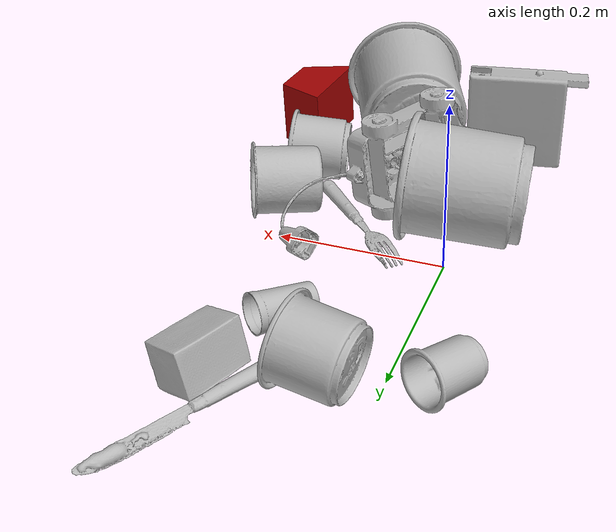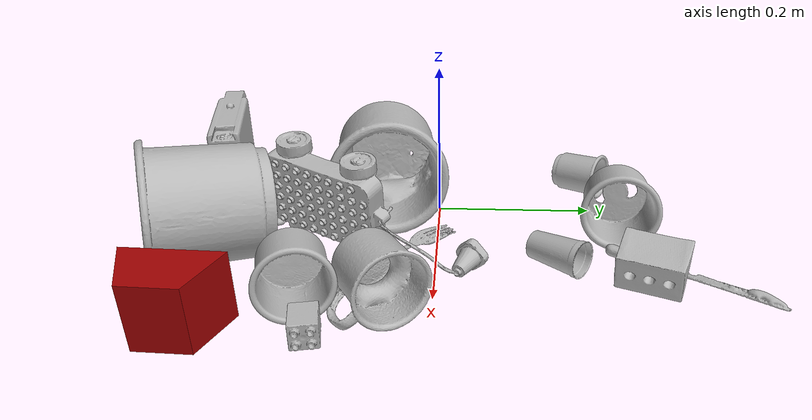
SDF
<sdf version="1.4">
  <world name="default">
    <light name="light1" type="point">
      <pose>0 0 1 0 0 0</pose>
      <diffuse>3 3 3 1</diffuse>
      <specular>3 3 3 1</specular>
    </light>
    <light name="light2" type="point">
      <pose>0 0.5 2 0 0 0</pose>
      <diffuse>1 1 1 1</diffuse>
      <specular>1 1 1 1</specular>
    </light>
    <light name="light3" type="point">
      <pose>0 0.5 2 0 0 0</pose>
      <diffuse>3 3 3 1</diffuse>
      <specular>3 3 3 1</specular>
    </light>
    <scene>
      <ambient>0.7 0.7 0.7</ambient>
    </scene>
    <model name="cup1">
      <link name="link_cup1">
        <collision name="default">
          <geometry>
            <mesh>
              <uri>model://i_cups/collision_meshes/collision.obj</uri>
              <scale>1.0 1.0 1.0</scale>
            </mesh>
          </geometry>
          <surface>
            <friction>
              <ode>
                <mu>0.5</mu>
                <mu2>0.5</mu2>
              </ode>
            </friction>
          <contact>
        <ode>
            <max_vel>0</max_vel>
            <min_depth>0.0001</min_depth>
            <kp>1e8</kp>
        </ode>
    </contact></surface>
        </collision>
        <visual name="default">
          <geometry>
            <mesh>
              <uri>model://i_cups/visual_meshes/visual.dae</uri>
              <scale>1.0 1.0 1.0</scale>
            </mesh>
          </geometry>
        </visual>
        <inertial>
          <mass>0.06118306145071983</mass>
          <pose>0.00011240330786677077 0.00016797454736661166 -0.0008579033892601728 -0.02898356853937009 -0.0398729445813228 -0.3459020996231002</pose>
          <inertia>
            <ixx>8.470886e-05</ixx>
            <iyy>8.5455235e-05</iyy>
            <izz>9.467588e-05</izz>
            <ixy>0</ixy>
            <ixz>0</ixz>
            <iyz>0</iyz>
          </inertia>
        </inertial>
      </link>
      <pose>0.05536220967769623 0.22734302282333374 0.044870030134916306 1.4436192381662185 0.061544239460025296 1.475266339243718</pose>
    </model>
    <model name="silverware1">
      <link name="link_silverware1">
        <collision name="default">
          <geometry>
            <mesh>
              <uri>model://fork/collision_meshes/collision.obj</uri>
              <scale>1.0 1.0 1.0</scale>
            </mesh>
          </geometry>
          <surface>
            <friction>
              <ode>
                <mu>0.5</mu>
                <mu2>0.5</mu2>
              </ode>
            </friction>
          <contact>
        <ode>
            <max_vel>0</max_vel>
            <min_depth>0.0001</min_depth>
            <kp>1e8</kp>
        </ode>
    </contact></surface>
        </collision>
        <visual name="default">
          <geometry>
            <mesh>
              <uri>model://fork/visual_meshes/visual.dae</uri>
              <scale>1.0 1.0 1.0</scale>
            </mesh>
          </geometry>
        </visual>
        <inertial>
          <mass>0.031184576451778412</mass>
          <pose>-0.02957005426287651 0.00046588247641921043 0.0003218861820641905 -0.013551007459636681 -0.010977840933376642 0.014453907264632249</pose>
          <inertia>
            <ixx>1.0931959e-06</ixx>
            <iyy>8.1413935e-05</iyy>
            <izz>8.1902916e-05</izz>
            <ixy>0</ixy>
            <ixz>0</ixz>
            <iyz>0</iyz>
          </inertia>
        </inertial>
      </link>
      <pose>0.12151890248060226 -0.05196761339902878 0.007446613162755966 -3.0634969385060566 0.002835908864871367 2.366267118518358</pose>
    </model>
    <model name="cup2">
      <link name="link_cup2">
        <collision name="default">
          <geometry>
            <mesh>
              <uri>model://cup_small/collision_meshes/collision.obj</uri>
              <scale>1.0 1.0 1.0</scale>
            </mesh>
          </geometry>
          <surface>
            <friction>
              <ode>
                <mu>0.5</mu>
                <mu2>0.5</mu2>
              </ode>
            </friction>
          <contact>
        <ode>
            <max_vel>0</max_vel>
            <min_depth>0.0001</min_depth>
            <kp>1e8</kp>
        </ode>
    </contact></surface>
        </collision>
        <visual name="default">
          <geometry>
            <mesh>
              <uri>model://cup_small/visual_meshes/visual.dae</uri>
              <scale>1.0 1.0 1.0</scale>
            </mesh>
          </geometry>
        </visual>
        <inertial>
          <mass>0.03407767415046692</mass>
          <pose>0.0001048250705935061 -0.00033778452780097723 -0.010742825455963612 -0.011493231776776816 -0.015280154496379641 -0.5058119732839097</pose>
          <inertia>
            <ixx>2.0064415e-05</ixx>
            <iyy>2.0167918e-05</iyy>
            <izz>9.059144e-06</izz>
            <ixy>0</ixy>
            <ixz>0</ixz>
            <iyz>0</iyz>
          </inertia>
        </inertial>
      </link>
      <pose>0.1302710473537445 0.14572393894195557 0.02019832469522953 1.4680544859566116 0.6364464518497291 2.400421531900736</pose>
    </model>
    <model name="silverware2">
      <link name="link_silverware2">
        <collision name="default">
          <geometry>
            <mesh>
              <uri>model://spoon/collision_meshes/collision.obj</uri>
              <scale>1.0 1.0 1.0</scale>
            </mesh>
          </geometry>
          <surface>
            <friction>
              <ode>
                <mu>0.5</mu>
                <mu2>0.5</mu2>
              </ode>
            </friction>
          <contact>
        <ode>
            <max_vel>0</max_vel>
            <min_depth>0.0001</min_depth>
            <kp>1e8</kp>
        </ode>
    </contact></surface>
        </collision>
        <visual name="default">
          <geometry>
            <mesh>
              <uri>model://spoon/visual_meshes/visual.dae</uri>
              <scale>1.0 1.0 1.0</scale>
            </mesh>
          </geometry>
        </visual>
        <inertial>
          <mass>0.016614587977528572</mass>
          <pose>-0.005526317749172449 -0.0016034182626754045 -0.0007271657232195139 0.03521671066550848 -0.039065848782153245 0.0061506117821598484</pose>
          <inertia>
            <ixx>9.241303e-07</ixx>
            <iyy>6.321795e-05</iyy>
            <izz>6.367369e-05</izz>
            <ixy>0</ixy>
            <ixz>0</ixz>
            <iyz>0</iyz>
          </inertia>
        </inertial>
      </link>
      <pose>0.046482738107442856 -0.20629309117794037 0.008390636183321476 0.008254541827905732 0.026739693431758842 1.9887259679696265</pose>
    </model>
    <model name="cup3">
      <link name="link_cup3">
        <collision name="default">
          <geometry>
            <mesh>
              <uri>model://mug/collision_meshes/collision.obj</uri>
              <scale>1.0 1.0 1.0</scale>
            </mesh>
          </geometry>
          <surface>
            <friction>
              <ode>
                <mu>0.5</mu>
                <mu2>0.5</mu2>
              </ode>
            </friction>
          <contact>
        <ode>
            <max_vel>0</max_vel>
            <min_depth>0.0001</min_depth>
            <kp>1e8</kp>
        </ode>
    </contact></surface>
        </collision>
        <visual name="default">
          <geometry>
            <mesh>
              <uri>model://mug/visual_meshes/visual.dae</uri>
              <scale>1.0 1.0 1.0</scale>
            </mesh>
          </geometry>
        </visual>
        <inertial>
          <mass>0.2187051922082901</mass>
          <pose>0.009571668691933155 0.0008143252925947309 -0.0109473317861557 -0.1298317614392908 0.08737757629698793 0.05507296169044089</pose>
          <inertia>
            <ixx>0.00021724429</ixx>
            <iyy>0.00024264908</iyy>
            <izz>0.00028062687</izz>
            <ixy>0</ixy>
            <ixz>0</ixz>
            <iyz>0</iyz>
          </inertia>
        </inertial>
      </link>
      <pose>0.22188685834407806 -0.06549832969903946 0.03669062629342079 1.4728483783865964 -0.5622032047955382 2.1445040462877563</pose>
    </model>
    <model name="silverware3">
      <link name="link_silverware3">
        <collision name="default">
          <geometry>
            <mesh>
              <uri>model://knife/collision_meshes/collision.obj</uri>
              <scale>1.0 1.0 1.0</scale>
            </mesh>
          </geometry>
          <surface>
            <friction>
              <ode>
                <mu>0.5</mu>
                <mu2>0.5</mu2>
              </ode>
            </friction>
          <contact>
        <ode>
            <max_vel>0</max_vel>
            <min_depth>0.0001</min_depth>
            <kp>1e8</kp>
        </ode>
    </contact></surface>
        </collision>
        <visual name="default">
          <geometry>
            <mesh>
              <uri>model://knife/visual_meshes/visual.dae</uri>
              <scale>1.0 1.0 1.0</scale>
            </mesh>
          </geometry>
        </visual>
        <inertial>
          <mass>0.02527560666203499</mass>
          <pose>-0.02378525398671627 0.0015275124460458755 5.062016498413868e-05 0.07305987488321217 0.01724841707462807 -0.007409821427235137</pose>
          <inertia>
            <ixx>7.174241e-07</ixx>
            <iyy>9.710476e-05</iyy>
            <izz>9.733581e-05</izz>
            <ixy>0</ixy>
            <ixz>0</ixz>
            <iyz>0</iyz>
          </inertia>
        </inertial>
      </link>
      <pose>0.15480434894561768 0.3016074001789093 0.005810457747429609 2.88917836522962 0.02590945432106918 1.0452675863794185</pose>
    </model>
    <model name="cup4">
      <link name="link_cup4">
        <collision name="default">
          <geometry>
            <mesh>
              <uri>model://f_cups/collision_meshes/collision.obj</uri>
              <scale>2.0 2.0 2.0</scale>
            </mesh>
          </geometry>
          <surface>
            <friction>
              <ode>
                <mu>0.5</mu>
                <mu2>0.5</mu2>
              </ode>
            </friction>
          <contact>
        <ode>
            <max_vel>0</max_vel>
            <min_depth>0.0001</min_depth>
            <kp>1e8</kp>
        </ode>
    </contact></surface>
        </collision>
        <visual name="default">
          <geometry>
            <mesh>
              <uri>model://f_cups/visual_meshes/visual.dae</uri>
              <scale>2.0 2.0 2.0</scale>
            </mesh>
          </geometry>
        </visual>
        <inertial>
          <mass>0.45639780163764954</mass>
          <pose>-0.006342936772853136 -0.0012480145087465644 -0.007311072666198015 0.7862311529960513 -0.2607925047248709 -0.18237200478465204</pose>
          <inertia>
            <ixx>0.0017161043</ixx>
            <iyy>0.0018002132</iyy>
            <izz>0.0018740727</izz>
            <ixy>0</ixy>
            <ixz>0</ixz>
            <iyz>0</iyz>
          </inertia>
        </inertial>
      </link>
      <pose>0.1260407567024231 -0.2686672806739807 0.07434296607971191 1.4682289573001552 -0.31499746344456453 0.45262992870482</pose>
    </model>
    <model name="cup41">
      <link name="link_cup41">
        <collision name="default">
          <geometry>
            <mesh>
              <uri>model://b_cups/collision_meshes/collision.obj</uri>
              <scale>1.0 1.0 1.0</scale>
            </mesh>
          </geometry>
          <surface>
            <friction>
              <ode>
                <mu>0.5</mu>
                <mu2>0.5</mu2>
              </ode>
            </friction>
          <contact>
        <ode>
            <max_vel>0</max_vel>
            <min_depth>0.0001</min_depth>
            <kp>1e8</kp>
        </ode>
    </contact></surface>
        </collision>
        <visual name="default">
          <geometry>
            <mesh>
              <uri>model://b_cups/visual_meshes/visual.dae</uri>
              <scale>1.0 1.0 1.0</scale>
            </mesh>
          </geometry>
        </visual>
        <inertial>
          <mass>0.02191556617617607</mass>
          <pose>0.0005182005115784705 0.0018058598507195711 -0.0013381809694692492 0.11356347292067202 0.038725069075056226 -0.34569439603942165</pose>
          <inertia>
            <ixx>1.4345273e-05</ixx>
            <iyy>1.4072923e-05</iyy>
            <izz>1.2071279e-05</izz>
            <ixy>0</ixy>
            <ixz>0</ixz>
            <iyz>0</iyz>
          </inertia>
        </inertial>
      </link>
      <pose>-0.05743558332324028 0.1936948597431183 0.027810338884592056 -1.4702624378212343 0.4295355721626374 -0.5215193551274033</pose>
    </model>
    <model name="cup5">
      <link name="link_cup5">
        <collision name="default">
          <geometry>
            <mesh>
              <uri>model://e_cups/collision_meshes/collision.obj</uri>
              <scale>2.0 2.0 2.0</scale>
            </mesh>
          </geometry>
          <surface>
            <friction>
              <ode>
                <mu>0.5</mu>
                <mu2>0.5</mu2>
              </ode>
            </friction>
          <contact>
        <ode>
            <max_vel>0</max_vel>
            <min_depth>0.0001</min_depth>
            <kp>1e8</kp>
        </ode>
    </contact></surface>
        </collision>
        <visual name="default">
          <geometry>
            <mesh>
              <uri>model://e_cups/visual_meshes/visual.dae</uri>
              <scale>2.0 2.0 2.0</scale>
            </mesh>
          </geometry>
        </visual>
        <inertial>
          <mass>0.30448246002197266</mass>
          <pose>0.0022711469791829586 0.005759572610259056 -0.00776594178751111 0.6952384510578399 0.08767941436067322 -0.5235260729612989</pose>
          <inertia>
            <ixx>0.0010739095</ixx>
            <iyy>0.001122389</iyy>
            <izz>0.0010267813</izz>
            <ixy>0</ixy>
            <ixz>0</ixz>
            <iyz>0</iyz>
          </inertia>
        </inertial>
      </link>
      <pose>-0.0047446358948946 -0.06937815248966217 0.07002885639667511 -1.4818842073088323 -0.41834623396742987 -1.4732271207326055</pose>
    </model>
    <model name="cup51">
      <link name="link_cup51">
        <collision name="default">
          <geometry>
            <mesh>
              <uri>model://h_cups/collision_meshes/collision.obj</uri>
              <scale>1.0 1.0 1.0</scale>
            </mesh>
          </geometry>
          <surface>
            <friction>
              <ode>
                <mu>0.5</mu>
                <mu2>0.5</mu2>
              </ode>
            </friction>
          <contact>
        <ode>
            <max_vel>0</max_vel>
            <min_depth>0.0001</min_depth>
            <kp>1e8</kp>
        </ode>
    </contact></surface>
        </collision>
        <visual name="default">
          <geometry>
            <mesh>
              <uri>model://h_cups/visual_meshes/visual.dae</uri>
              <scale>1.0 1.0 1.0</scale>
            </mesh>
          </geometry>
        </visual>
        <inertial>
          <mass>0.042455922812223434</mass>
          <pose>-2.703044083318673e-05 0.00023018660431262106 -0.0018405403243377805 -0.024361995264993386 0.06545231449212868 0.1288536550905752</pose>
          <inertia>
            <ixx>5.4829856e-05</ixx>
            <iyy>5.4175573e-05</iyy>
            <izz>5.7501496e-05</izz>
            <ixy>0</ixy>
            <ixz>0</ixz>
            <iyz>0</iyz>
          </inertia>
        </inertial>
      </link>
      <pose>0.2110910415649414 -0.15211133658885956 0.042194824665784836 1.2048577606976771 1.2773920707295554 1.493863458692669</pose>
    </model>
    <model name="toy1">
      <link name="link_toy1">
        <collision name="default">
          <geometry>
            <mesh>
              <uri>model://f_lego_duplo/collision_meshes/collision.obj</uri>
              <scale>1.0 1.0 1.0</scale>
            </mesh>
          </geometry>
          <surface>
            <friction>
              <ode>
                <mu>0.5</mu>
                <mu2>0.5</mu2>
              </ode>
            </friction>
          <contact>
        <ode>
            <max_vel>0</max_vel>
            <min_depth>0.0001</min_depth>
            <kp>1e8</kp>
        </ode>
    </contact></surface>
        </collision>
        <visual name="default">
          <geometry>
            <mesh>
              <uri>model://f_lego_duplo/visual_meshes/visual.dae</uri>
              <scale>1.0 1.0 1.0</scale>
            </mesh>
          </geometry>
        </visual>
        <inertial>
          <mass>0.02241816557943821</mass>
          <pose>2.3694117771810852e-05 0.0001339316659141332 0.0018837875686585903 0.029838520561624126 -0.014425134948969536 -0.6756620822172864</pose>
          <inertia>
            <ixx>4.7370827e-06</ixx>
            <iyy>4.779284e-06</iyy>
            <izz>4.1119874e-06</izz>
            <ixy>0</ixy>
            <ixz>0</ixz>
            <iyz>0</iyz>
          </inertia>
        </inertial>
      </link>
      <pose>0.2722615897655487 -0.12906938791275024 0.01650198921561241 -1.5707922591465888 2.950355295283139e-06 -1.407015408995811</pose>
    </model>
    <model name="toy2">
      <link name="link_toy2">
        <collision name="default">
          <geometry>
            <mesh>
              <uri>model://nine_hole_peg_test/collision_meshes/collision.obj</uri>
              <scale>1.0 1.0 1.0</scale>
            </mesh>
          </geometry>
          <surface>
            <friction>
              <ode>
                <mu>0.5</mu>
                <mu2>0.5</mu2>
              </ode>
            </friction>
          <contact>
        <ode>
            <max_vel>0</max_vel>
            <min_depth>0.0001</min_depth>
            <kp>1e8</kp>
        </ode>
    </contact></surface>
        </collision>
        <visual name="default">
          <geometry>
            <mesh>
              <uri>model://nine_hole_peg_test/visual_meshes/visual.dae</uri>
              <scale>1.0 1.0 1.0</scale>
            </mesh>
          </geometry>
        </visual>
        <inertial>
          <mass>0.9336897134780884</mass>
          <pose>-0.004617386497557163 -0.009647615253925323 2.6460686058271676e-05 -0.0014666796876693252 0.0007194179493738156 -0.6342417556307235</pose>
          <inertia>
            <ixx>0.0014599775</ixx>
            <iyy>0.0013631656</iyy>
            <izz>0.0025583105</izz>
            <ixy>0</ixy>
            <ixz>0</ixz>
            <iyz>0</iyz>
          </inertia>
        </inertial>
      </link>
      <pose>-0.028569258749485016 -0.28067922592163086 0.06863507628440857 -1.6633966906911695 -1.563596765025405 -2.864239141351078</pose>
    </model>
    <model name="toy3">
      <link name="link_toy3">
        <collision name="default">
          <geometry>
            <mesh>
              <uri>model://prism/collision_meshes/collision.obj</uri>
              <scale>1.0 1.0 1.0</scale>
            </mesh>
          </geometry>
          <surface>
            <friction>
              <ode>
                <mu>0.5</mu>
                <mu2>0.5</mu2>
              </ode>
            </friction>
          <contact>
        <ode>
            <max_vel>0</max_vel>
            <min_depth>0.0001</min_depth>
            <kp>1e8</kp>
        </ode>
    </contact></surface>
        </collision>
        <visual name="default">
          <geometry>
            <mesh>
              <uri>model://prism/visual_meshes/visual.dae</uri>
              <scale>1.0 1.0 1.0</scale>
            </mesh>
          </geometry>
        </visual>
        <inertial>
          <mass>0.45664992928504944</mass>
          <pose>-9.85359656624496e-05 -4.96157269935793e-07 -0.0033869100734591484 0.0 0.006559178903460961 0.0</pose>
          <inertia>
            <ixx>0.0004121209</ixx>
            <iyy>0.00049805344</iyy>
            <izz>0.0006100559</izz>
            <ixy>0</ixy>
            <ixz>0</ixz>
            <iyz>0</iyz>
          </inertia>
        </inertial>
      </link>
      <pose>0.2665192782878876 -0.2694375216960907 0.04158850386738777 1.583635651734476 5.415345064398699e-07 1.5290946534115668</pose>
    </model>
    <model name="toy4">
      <link name="link_toy4">
        <collision name="default">
          <geometry>
            <mesh>
              <uri>model://g_lego_duplo/collision_meshes/collision.obj</uri>
              <scale>1.0 1.0 1.0</scale>
            </mesh>
          </geometry>
          <surface>
            <friction>
              <ode>
                <mu>0.5</mu>
                <mu2>0.5</mu2>
              </ode>
            </friction>
          <contact>
        <ode>
            <max_vel>0</max_vel>
            <min_depth>0.0001</min_depth>
            <kp>1e8</kp>
        </ode>
    </contact></surface>
        </collision>
        <visual name="default">
          <geometry>
            <mesh>
              <uri>model://g_lego_duplo/visual_meshes/visual.dae</uri>
              <scale>1.0 1.0 1.0</scale>
            </mesh>
          </geometry>
        </visual>
        <inertial>
          <mass>0.39620378613471985</mass>
          <pose>-0.05004769191145897 0.0017554654041305184 0.003880677744746208 0.010963058510667364 0.03810828654928447 -0.09653021192595126</pose>
          <inertia>
            <ixx>0.0005741041</ixx>
            <iyy>0.0017357017</iyy>
            <izz>0.0021714251</izz>
            <ixy>0</ixy>
            <ixz>0</ixz>
            <iyz>0</iyz>
          </inertia>
        </inertial>
      </link>
      <pose>0.11377228796482086 -0.082889124751091 0.05915787070989609 1.6602623557995266 0.048914931850085594 1.0756375044430038</pose>
    </model>
    <model name="toy5">
      <link name="link_toy5">
        <collision name="default">
          <geometry>
            <mesh>
              <uri>model://foam_brick/collision_meshes/collision.obj</uri>
              <scale>1.0 1.0 1.0</scale>
            </mesh>
          </geometry>
          <surface>
            <friction>
              <ode>
                <mu>0.5</mu>
                <mu2>0.5</mu2>
              </ode>
            </friction>
          <contact>
        <ode>
            <max_vel>0</max_vel>
            <min_depth>0.0001</min_depth>
            <kp>1e8</kp>
        </ode>
    </contact></surface>
        </collision>
        <visual name="default">
          <geometry>
            <mesh>
              <uri>model://foam_brick/visual_meshes/visual.dae</uri>
              <scale>1.0 1.0 1.0</scale>
            </mesh>
          </geometry>
        </visual>
        <inertial>
          <mass>0.10564772039651871</mass>
          <pose>-0.00025224717683158815 0.00034584361128509045 -0.00025321010616607964 -0.29402271699624904 0.017274444128295662 -0.0007449905040366932</pose>
          <inertia>
            <ixx>4.6148893e-05</ixx>
            <iyy>7.367908e-05</iyy>
            <izz>7.4615455e-05</izz>
            <ixy>0</ixy>
            <ixz>0</ixz>
            <iyz>0</iyz>
          </inertia>
        </inertial>
      </link>
      <pose>0.16870854794979095 0.24916300177574158 0.030977023765444756 1.8379731450634127 -0.005603733204066189 1.1946240430515138</pose>
    </model>
  <physics type="ode">
      <max_contacts>50</max_contacts>
      <ode>
        <solver>
          <type>quick</type>
          <iters>75</iters>
        </solver>
        <constraints>
          <contact_max_correcting_vel>0</contact_max_correcting_vel>
          <contact_surface_layer>0</contact_surface_layer>
        </constraints>
      </ode>
    </physics></world>
</sdf>
